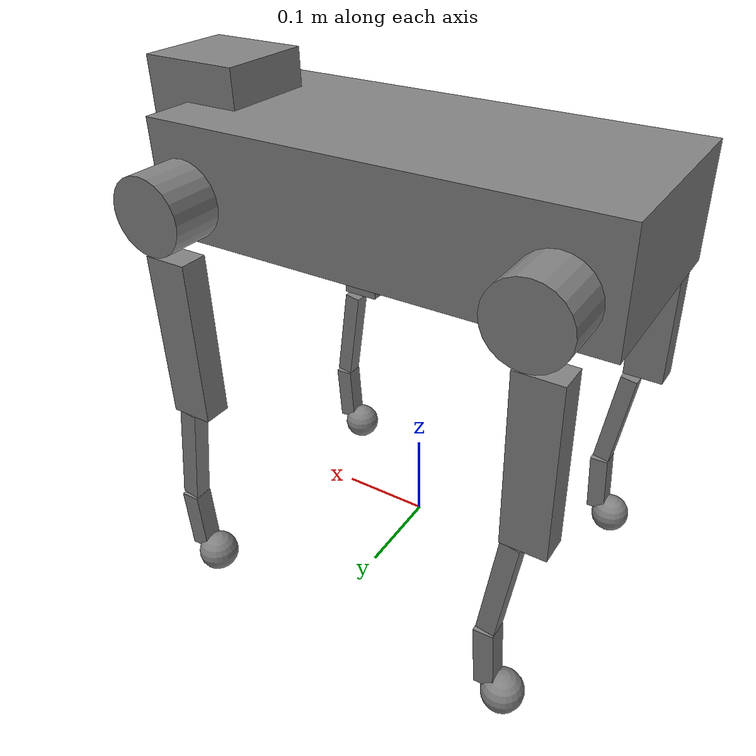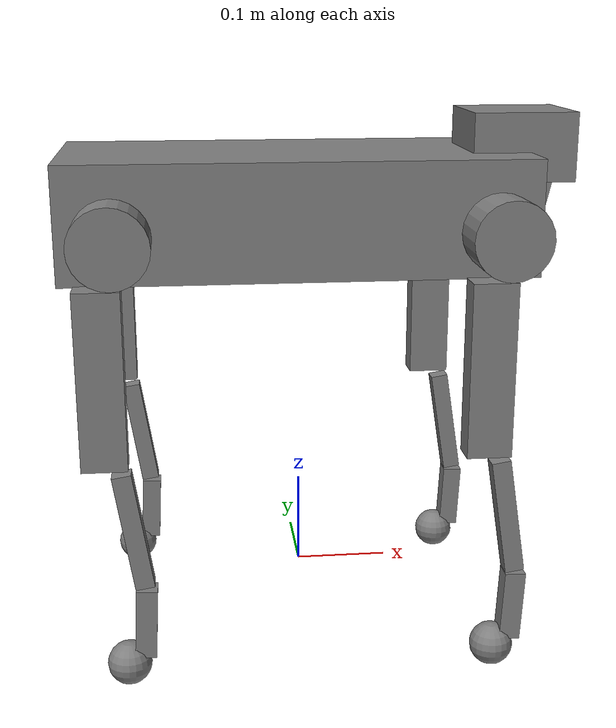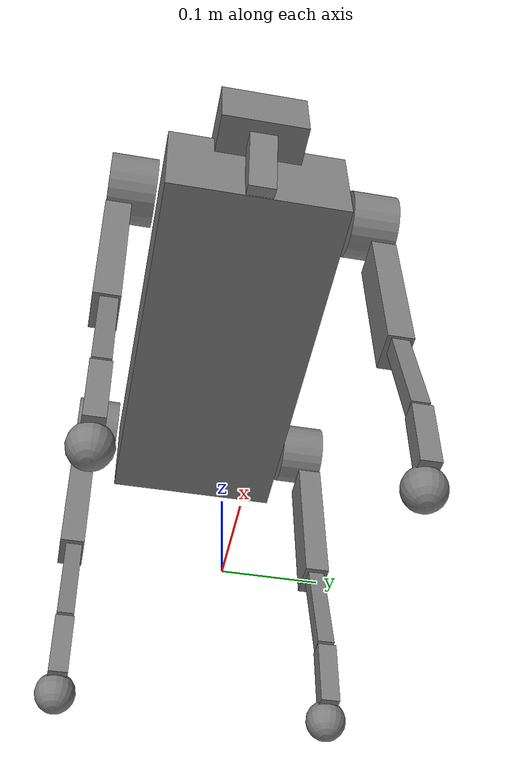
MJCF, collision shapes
<mujoco model="cyvet">
  <compiler angle="radian" meshdir="." autolimits="true"/>

  <option iterations="20" ls_iterations="5" timestep="0.002" integrator="Euler">
    <flag eulerdamp="disable"/>
  </option>

  <default>
    <default class="cyvet">

      <geom condim="1" contype="0" conaffinity="1"/>
      <joint axis="0 1 0" armature="0.005" damping="0.05"/>
      <position forcerange="-48 48" inheritrange="1.5" kp="50"/>

      <default class="abduction">
        <joint axis="1 0 0" range="-0.5233 0.5233" armature="0.018983" damping="0.240816" frictionloss="0.132206"  margin="0.02" solreflimit="0.001 1"/>
      </default>

      <default class="hip">
        <joint range="-1.1775 2.7475" armature="0.017137" damping="0.272969" frictionloss="0.482685"  margin="0.02" solreflimit="0.001 1"/>
      </default>

      <default class="knee">
        <joint range="-2.7562 -0.6978" armature="0.020173" damping="0.263799" frictionloss="0.084939" margin="0.02" solreflimit="0.001 1"/>
      </default>

      <default class="visual">
        <geom type="mesh" contype="0" conaffinity="0" group="2" material="dark"/>
      </default>

      <default class="collision">
        <geom group="3" type="capsule"/>
        <default class="foot">
          <geom type="sphere" size="0.023" pos="0 0 0" solimp="0.9 .95 0.023" condim="3"/>
        </default>
      </default>

    </default>
  </default>

  <asset>
    <material name="dark" rgba="0.2 0.2 0.2 1"/>
    <material name="none" rgba="0.75294 0.75294 0.75294 1" />
    <material name="default_material" rgba="0.7 0.7 0.7 1" />
    <material name="collision_material" rgba="1.0 0.28 0.1 0.9" />
    <mesh name="BASE_LINK.STL" file="../meshes/base_link.stl" />
    <mesh name="FL_ABAD_LINK.STL" file="../meshes/fl_abad_link.stl" />
    <mesh name="FL_HIP_LINK.STL" file="../meshes/fl_hip_link.stl" />
    <mesh name="FL_KNEE_LINK.STL" file="../meshes/fl_knee_link.stl" />
    <mesh name="FL_FOOT_LINK.STL" file="../meshes/fl_foot_link.stl" />
    <mesh name="FR_ABAD_LINK.STL" file="../meshes/fr_abad_link.stl" />
    <mesh name="FR_HIP_LINK.STL" file="../meshes/fr_hip_link.stl" />
    <mesh name="FR_KNEE_LINK.STL" file="../meshes/fr_knee_link.stl" />
    <mesh name="FR_FOOT_LINK.STL" file="../meshes/fr_foot_link.stl" />
    <mesh name="RR_ABAD_LINK.STL" file="../meshes/rr_abad_link.stl" />
    <mesh name="RR_HIP_LINK.STL" file="../meshes/rr_hip_link.stl" />
    <mesh name="RR_KNEE_LINK.STL" file="../meshes/rr_knee_link.stl" />
    <mesh name="RR_FOOT_LINK.STL" file="../meshes/rr_foot_link.stl" />
    <mesh name="RL_ABAD_LINK.STL" file="../meshes/rl_abad_link.stl" />
    <mesh name="RL_HIP_LINK.STL" file="../meshes/rl_hip_link.stl" />
    <mesh name="RL_KNEE_LINK.STL" file="../meshes/rl_knee_link.stl" />
    <mesh name="RL_FOOT_LINK.STL" file="../meshes/rl_foot_link.stl" />
  </asset>

  <worldbody>
    <light name="spotlight" mode="targetbodycom" target="case" pos="3 0 4"/>
    <body name="case"  pos="0 0 0.4" childclass="cyvet" quat="1 0 0 0">
      <camera name="track" pos="0.846 -1.3 0.316" xyaxes="0.866 0.500 0.000 -0.171 0.296 0.940" mode="trackcom"/>
      <camera name="top" pos="-1 0 1" xyaxes="0 -1 0 0.7 0 0.7" mode="trackcom"/>
      <camera name="side" pos="0 -1 .3" xyaxes="1 0 0 0 1 2" mode="trackcom"/>
      <camera name="back" pos="-1 0 .3" xyaxes="0 -1 0 1 0 2" mode="trackcom"/>
      <inertial pos="0.01000403 0.0033084 0.00460078" quat="0.012040849557521549 0.6800981123362808 0.007500260990009389 0.7329838481328537" mass="7.7" diaginertia="0.11534543043026305 0.09769289459846409 0.03504929854026209"/>

      <freejoint/>

      <geom class="visual" type="mesh" rgba="0.592156862745098 0.666666666666667 0.682352941176471 1" mesh="BASE_LINK.STL" />
      <geom name="case" class="collision" type="box" size="0.245 0.1095 0.06" pos="-0.005 0 0.011469"/>
      <geom name="case_1" class="collision" type="box" size="0.0125 0.0166 0.045" pos="0.25239 0 -0.00332" quat="0.993571856 0 0.113203214 0"/>
      <geom name="case_2" class="collision" type="box" size="0.055 0.053 0.036" pos="0.23335 0 0.076435"/>

      <site name="case" pos="0 0 0" rgba="1 0 0 1" size="0.02" group="5"/>
      <site name="imu" pos="0 0 0" rgba="0 1 0 1" size="0.02" group="5"/>

      <body name="FL_hip" pos="0.144 0.064225 -2.0143e-05">
        <inertial pos="0.0224121948144358 -0.0113603891974002 -6.25878030513505e-07" quat="0.5030187262613786 0.5031577918210159 0.49687239689008383 0.496912687268986" mass="0.12099999999999998" diaginertia="0.00011790458901123173 0.00010944114844436285 8.88047929765839e-05"/>

        <joint class="abduction" name="FL_hip_joint" pos="0 0 0" axis="1 0 0"/>
        <geom type="mesh" class="visual" rgba="1 1 1 1" mesh="FL_ABAD_LINK.STL"/>
        <!-- FL_ABAD_Collision -->
        <geom name="FL_ABAD_COL" class="collision" type="cylinder" size="0.04 0.0275" pos="0.05 0.08 0" quat="0.499998163 0.500001837 -0.5 0.5"/>

        <body name="FL_thigh" pos="0.04855 0.01325 0">
          <inertial pos="-0.00194205 0.02455512 -0.01587302" quat="0.9712844532354105 0.23427318320277746 0.035688819773244326 0.0211871347383409" mass="1.438" diaginertia="0.005924184631358476 0.0050076666711456495 0.0019642766214632043"/>
          <joint class="hip" name="FL_thigh_joint" pos="0 0 0" axis="0 1 0" />
          <site name="FL_hip" pos="0 0.0 0" type="sphere" size="0.02" rgba="0 1 0 1" group="5"/>

          <geom type="mesh" class="visual" rgba="1 1 1 1" mesh="FL_HIP_LINK.STL" />
          <!-- FL_HIP_Collision -->
          <geom name="FL_HIP_COL" class="collision" type="box" size="0.023 0.015 0.09" pos="-0.015 0.08 -0.13" quat="1 0 0 0"/>

          <body name="FL_calf" pos="0 0.077399 -0.21">
            <inertial pos="0.00798892884615243 5.44138171354458e-07 -0.0869849769197685" quat="0.7064576324610246 -0.03014641061712461 -0.030140530772219027 0.7064703503114889" mass="0.167" diaginertia="0.0012041157308674284 0.0011900846564550417 2.6088823392219033e-05"/>
            <site name="FL_knee" pos="0 0.0 0" type="sphere" size="0.02" rgba="0 1 0 1" group="5"/>

            <joint class="knee" name="FL_calf_joint" pos="0 0 0" axis="0 1 0" />

                    <geom type="mesh" class="visual" rgba="1 1 1 1" mesh="FL_KNEE_LINK.STL" />
                    <!-- FL_KNEE_Collision -->
                    <geom name="FL_KNEE_COL_0" class="collision" type="box" size="0.01 0.01 0.062" pos="0.009917 0 -0.079793" quat="0.996917334 0 -0.0784590959 0"/>
                    <geom name="FL_KNEE_COL_1" class="collision" type="box" size="0.011 0.011 0.0375" pos="0.018955 0 -0.18187" quat="0.99968856 0 0.024955609 0"/>

                    <body name="FL_rub" pos="0 0 -0.229">
                    <geom pos="0 0 0" type="mesh" class="visual" rgba="0.592156862745098 0.666666666666667 0.682352941176471 1" mesh="FL_FOOT_LINK.STL" />
                    <inertial pos="-2.02372318569566e-07 1.92661398834559e-07 -2.15647114332196e-07" quat="0.707106781186548 0 0 0.707106781186548" mass="0.07" diaginertia="1.481427756599195e-05 1.4814257783490476e-05 1.4814257783490594e-05" />
                    <!-- FL_FOOT_Collision -->
                    <geom name="FL" class="foot" pos="0 0 0"/>
                    <site name="FL" pos="0 0 0" type="sphere" size="0.023" quat="0 0 1 1" group="5"/>
                    </body>

          </body>
        </body>
      </body>

      <body name="FR_hip" pos="0.144 -0.064181 -2.0143e-05">
        <inertial pos="0.0224124762038457 0.0113595096494994 -4.17309715394776e-07" quat="0.4968966025378362 0.4968805901404142 0.503105502665294 0.5030788195859313" mass="0.12100290502215937" diaginertia="0.00011791020493468241 0.00010944500943327394 8.88102878899914e-05"/>

        <joint class="abduction" name="FR_hip_joint" pos="0 0 0" axis="1 0 0"/>
        <geom type="mesh" class="visual" rgba="1 1 1 1" mesh="FR_ABAD_LINK.STL"/>
        <!-- FR_ABAD_Collision -->
        <geom name="FR_ABAD_COL" class="collision" type="cylinder" size="0.04 0.0275" pos="0.05 -0.08 0" quat="0.499998163 0.500001837 -0.5 0.5"/>

        <body name="FR_thigh" pos="0.04855 -0.01325 0">
          <inertial pos="-0.00194205 -0.02455512 -0.01587302" quat="0.9712844532354105 -0.23427318320277746 0.035688819773244326 -0.0211871347383409" mass="1.438" diaginertia="0.005924184631358476 0.0050076666711456495 0.0019642766214632043"/>
          <joint class="hip" name="FR_thigh_joint" pos="0 0 0" axis="0 1 0" />
          <site name="FR_hip" pos="0 -0.0 0" type="sphere" size="0.02" rgba="0 1 0 1" group="5"/>

          <geom type="mesh" class="visual" rgba="1 1 1 1" mesh="FR_HIP_LINK.STL" />
          <!-- FR_HIP_Collision -->
          <geom name="FR_HIP_COL" class="collision" type="box" size="0.023 0.015 0.09" pos="-0.015 -0.08 -0.13" quat="1 0 0 0"/>

          <body name="FR_calf" pos="0 -0.077399 -0.21">
            <inertial pos="0.00798935286039343 -5.56292452311147e-08 -0.0869799505392584" quat="0.7064483359087055 -0.03014119732510349 -0.03014203197668922 0.7064798049653984" mass="0.1670130542472294" diaginertia="0.0012041985098741688 0.0011901661580206518 2.609059788554795e-05"/>
            <site name="FR_knee" pos="0 -0.0 0" type="sphere" size="0.02" rgba="0 1 0 1" group="5"/>

            <joint class="knee" name="FR_calf_joint" pos="0 0 0" axis="0 1 0" />
            <geom type="mesh" class="visual" rgba="1 1 1 1" mesh="FR_KNEE_LINK.STL" />
            <!-- FL_KNEE_Collision -->
            <geom name="FR_KNEE_COL_0" class="collision" type="box" size="0.01 0.01 0.062" pos="0.009917 0 -0.079793" quat="0.996917334 0 -0.0784590959 0"/>
            <geom name="FR_KNEE_COL_1" class="collision" type="box" size="0.011 0.011 0.0375" pos="0.018955 0 -0.18187" quat="0.99968856 0 0.024955609 0"/>

            <body name="FR_rub" pos="0 0 -0.229">
            <geom pos="0 0 0" type="mesh" class="visual" rgba="0.592156862745098 0.666666666666667 0.682352941176471 1" mesh="FR_FOOT_LINK.STL" />
            <inertial pos="-2.02372318569566e-07 -1.92661398876193e-07 -2.15647114332196e-07" quat="0.707106781186548 0 0 0.707106781186548" mass="0.07" diaginertia="1.481427756599195e-05 1.4814257783490476e-05 1.4814257783490594e-05" />
            <geom name="FR" class="foot" pos="0 0 0"/>
            <site name="FR"  type="sphere" size="0.023" pos="0 0 0" quat="0 0 1 1" group="5"/>
            </body>

          </body>
        </body>
      </body>

      <body name="RL_hip" pos="-0.144 0.064225 0">
        <inertial pos="-0.022412487802895 -0.011359512648622 4.02582695516185e-06" quat="0.49683323329813966 0.49694384032649097 0.5031301599985629 0.5030542713782469" mass="0.12100296460958171" diaginertia="0.0001179103027040821 0.0001094450024968766 8.881046518981511e-05"/>

        <joint class="abduction" name="RL_hip_joint" pos="0 0 0" axis="1 0 0"/>
        <geom type="mesh" class="visual" rgba="1 1 1 1" mesh="RL_ABAD_LINK.STL"/>
        <!-- RL_ABAD_Collision -->
        <geom name="RL_ABAD_COL" class="collision" type="cylinder" size="0.04 0.0275" pos="-0.05 0.08 0" quat="0.499998163 0.500001837 -0.5 0.5"/>

        <body name="RL_thigh" pos="-0.04855 0.01325 0">
          <inertial pos="-0.00194205 0.02455512 -0.01587302" quat="0.9712844532354105 0.23427318320277746 0.035688819773244326 0.0211871347383409" mass="1.438" diaginertia="0.005924184631358476 0.0050076666711456495 0.0019642766214632043"/>
          <joint class="hip" name="RL_thigh_joint" pos="0 0 0" axis="0 1 0" />
          <site name="RL_hip" pos="0 0.0 0" type="sphere" size="0.02" rgba="0 1 0 1" group="5"/>

          <geom type="mesh" class="visual" rgba="1 1 1 1" mesh="RL_HIP_LINK.STL" />
          <!-- RL_HIP_Collision -->
          <geom name="RL_HIP_COL" class="collision" type="box" size="0.023 0.015 0.09" pos="-0.015 0.08 -0.13" quat="1 0 0 0"/>

          <body name="RL_calf" pos="0 0.077399 -0.21">
            <inertial pos="0.00798892953835353 5.44350461428866e-07 -0.0869849698117145" quat="0.7064576256934951 -0.030146407102064742 -0.030140525851691847 0.7064703574388176" mass="0.16700002369296388" diaginertia="0.0012041157960184525 0.001190084719613259 2.60888260610447e-05"/>
            <site name="RL_knee" pos="0 0.0 0" type="sphere" size="0.02" rgba="0 1 0 1" group="5"/>

            <joint class="knee" name="RL_calf_joint" pos="0 0 0" axis="0 1 0" />
            <geom type="mesh" class="visual" rgba="1 1 1 1" mesh="RL_KNEE_LINK.STL" />
            <!-- RL_KNEE_Collision -->
            <geom name="RL_KNEE_COL_0" class="collision" type="box" size="0.01 0.01 0.062" pos="0.009917 0 -0.079793" quat="0.996917334 0 -0.0784590959 0"/>
            <geom name="RL_KNEE_COL_1" class="collision" type="box" size="0.011 0.011 0.0375" pos="0.018955 0 -0.18187" quat="0.99968856 0 0.024955609 0"/>

            <body name="RL_rub" pos="0 0 -0.229">
            <geom pos="0 0 0" type="mesh" class="visual" rgba="0.592156862745098 0.666666666666667 0.682352941176471 1" mesh="RL_FOOT_LINK.STL" />
            <inertial pos="-2.02372318444666e-07 1.92661398834559e-07 -2.15647113332995e-07" quat="0.707106781186548 0 0 0.707106781186548" mass="0.07" diaginertia="1.481427756599207e-05 1.4814257783490594e-05 1.4814257783490594e-05" />
            <geom name="RL" class="foot" pos="0 0 0"/>
            <site name="RL" type="sphere" size="0.023" pos="0 0 0" group="5"/>
            </body>

          </body>
        </body>
      </body>

      <body name="RR_hip" pos="-0.144 -0.064181 0">
        <inertial pos="-0.0224121580976738 0.0113603235206001 3.73366881317727e-06" quat="0.5031121676527441 0.5030661372832415 0.49696579856243345 0.4968174748716894" mass="0.12100045029579216" diaginertia="0.00011790480784409755 0.00010944136950460653 8.880500990930977e-05"/>

        <joint class="abduction" name="RR_hip_joint" pos="0 0 0" axis="1 0 0"/>
        <geom type="mesh" class="visual" rgba="1 1 1 1" mesh="RR_ABAD_LINK.STL"/>
        <!-- RR_ABAD_Collision -->
        <geom name="RR_ABAD_COL" class="collision" type="cylinder" size="0.04 0.0275" pos="-0.05 -0.08 0" quat="0.499998163 0.500001837 -0.5 0.5"/>

        <body name="RR_thigh" pos="-0.04855 -0.01325 0">
          <inertial pos="-0.00194205 -0.02455512 -0.01587302" quat="0.9712844532354105 -0.23427318320277746 0.035688819773244326 -0.0211871347383409" mass="1.438" diaginertia="0.005924184631358476 0.0050076666711456495 0.0019642766214632043"/>
          <joint class="hip" name="RR_thigh_joint" pos="0 0 0" axis="0 1 0" />
          <site name="RR_hip" pos="0 -0.0 0" type="sphere" size="0.02" rgba="0 1 0 1" group="5"/>

          <geom type="mesh" class="visual" rgba="1 1 1 1" mesh="RR_HIP_LINK.STL" />
          <!-- RL_HIP_Collision -->
          <geom name="RR_HIP_COL" class="collision" type="box" size="0.023 0.015 0.09" pos="-0.015 -0.08 -0.13" quat="1 0 0 0"/>

          <body name="RR_calf" pos="0 -0.077399 -0.21">
            <inertial pos="0.00798915209065952 -1.36080421812845e-07 -0.0869792912108696" quat="0.7064535218186198 -0.0301407454511528 -0.030141458257452763 0.7064746630048621" mass="0.16701135121073604" diaginertia="0.0012041903722809111 0.0011901582795690343 2.6090112676188058e-05"/>
            <site name="RR_knee" pos="0 -0.0 0" type="sphere" size="0.02" rgba="0 1 0 1" group="5"/>

            <joint class="knee" name="RR_calf_joint" pos="0 0 0" axis="0 1 0" />

                    <geom type="mesh" class="visual" rgba="1 1 1 1" mesh="RR_KNEE_LINK.STL" />
                  <!-- RL_KNEE_Collision -->
                  <geom name="RR_KNEE_COL_0" class="collision" type="box" size="0.01 0.01 0.062" pos="0.009917 0 -0.079793" quat="0.996917334 0 -0.0784590959 0"/>
                  <geom name="RR_KNEE_COL_1" class="collision" type="box" size="0.011 0.011 0.0375" pos="0.018955 0 -0.18187" quat="0.99968856 0 0.024955609 0"/>
                  <body name="RR_rub" pos="0 0 -0.229">
                  <geom pos="0 0 0" type="mesh" class="visual" rgba="0.592156862745098 0.666666666666667 0.682352941176471 1" mesh="RR_FOOT_LINK.STL" />
                  <inertial pos="-2.02372318389155e-07 -1.92661398876193e-07 -2.15647113332995e-07" quat="0.707106781186548 0 0 0.707106781186548" mass="0.07" diaginertia="1.481427756599207e-05 1.4814257783490594e-05 1.4814257783490594e-05" />
                  <geom name="RR" class="foot" pos="0 0 0"/>
                  <site name="RR" type="sphere" size="0.023" pos="0 0 0" group="5"/>
                  </body>

          </body>
        </body>
      </body>

    </body>
  </worldbody>

  <actuator>
    <position class="abduction" name="FL_hip" joint="FL_hip_joint" />
    <position class="hip" name="FL_thigh" joint="FL_thigh_joint"/>
    <position class="knee" name="FL_calf" joint="FL_calf_joint"/>
    <position class="abduction" name="FR_hip" joint="FR_hip_joint"/>
    <position class="hip" name="FR_thigh" joint="FR_thigh_joint"/>
    <position class="knee" name="FR_calf" joint="FR_calf_joint"/>
    <position class="abduction" name="RL_hip" joint="RL_hip_joint"/>
    <position class="hip" name="RL_thigh" joint="RL_thigh_joint"/>
    <position class="knee" name="RL_calf" joint="RL_calf_joint"/>
    <position class="abduction" name="RR_hip" joint="RR_hip_joint"/>
    <position class="hip" name="RR_thigh" joint="RR_thigh_joint"/>
    <position class="knee" name="RR_calf" joint="RR_calf_joint"/>
  </actuator>

  <sensor>
    <gyro site="imu" name="gyro"/>
    <velocimeter site="imu" name="local_linvel"/>
    <accelerometer site="imu" name="accelerometer"/>
    <framepos objtype="site" objname="imu" name="position"/>
    <framezaxis objtype="site" objname="imu" name="upvector"/>
    <framexaxis objtype="site" objname="imu" name="forwardvector"/>
    <framelinvel objtype="site" objname="imu" name="global_linvel"/>
    <frameangvel objtype="site" objname="imu" name="global_angvel"/>
    <framequat objtype="site" objname="imu" name="orientation"/>
    <framelinvel objtype="site" objname="FL" name="FL_global_linvel"/>
    <framelinvel objtype="site" objname="FR" name="FR_global_linvel"/>
    <framelinvel objtype="site" objname="RL" name="RL_global_linvel"/>
    <framelinvel objtype="site" objname="RR" name="RR_global_linvel"/>
     <framepos objtype="site" objname="FL" name="FL_pos" reftype="site" refname="imu"/>
    <framepos objtype="site" objname="FR" name="FR_pos" reftype="site" refname="imu"/>
    <framepos objtype="site" objname="RL" name="RL_pos" reftype="site" refname="imu"/>
    <framepos objtype="site" objname="RR" name="RR_pos" reftype="site" refname="imu"/>
    <touch site="FL" name="FL_contact_force"/>
    <touch site="FR" name="FR_contact_force"/>
    <touch site="RL" name="RL_contact_force"/>
    <touch site="RR" name="RR_contact_force"/>
  </sensor>
</mujoco>
